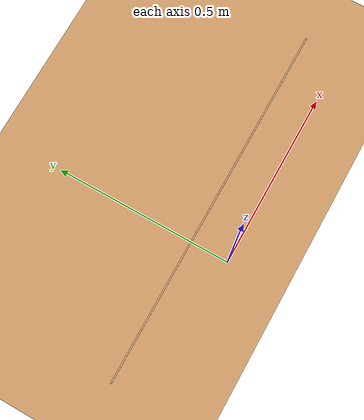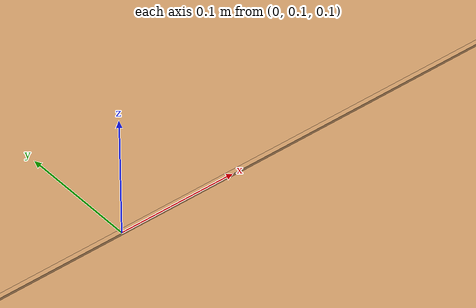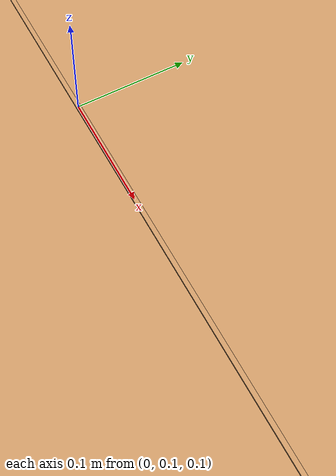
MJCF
<mujoco model="ant">
  <compiler angle="degree" coordinate="local" inertiafromgeom="true"/>
  <option timestep="0.01" iterations="4"/>

  <default>
    <joint armature="1" damping="1" limited="true"/>
    <geom contype="0" conaffinity="0" condim="3" density="5.0" friction="1 0.5 0.5" rgba="0.8 0.6 0.4 1"/>
  </default>
  <asset>
    <texture builtin="gradient" height="100" rgb1="1 1 1" rgb2="0 0 0" type="skybox" width="100"/>
    <texture builtin="flat" height="1278" mark="cross" markrgb="1 1 1" name="texgeom" random="0.01" rgb1="0.8 0.6 0.4" rgb2="0.8 0.6 0.4" type="cube" width="127"/>
    <texture builtin="checker" height="100" name="texplane" rgb1="0 0 0" rgb2="0.8 0.8 0.8" type="2d" width="100"/>
    <material name="MatPlane" reflectance="0.5" shininess="1" specular="1" texrepeat="60 60" texture="texplane"/>
    <material name="geom" texture="texgeom" texuniform="true"/>
    <mesh name="box" file="tet.obj"/>
  </asset>

  <worldbody>
    <light cutoff="100" diffuse="1 1 1" dir="-0 0 -1.3" directional="true" exponent="1" pos="0 0 1.3" specular=".1 .1 .1"/>
    <geom name="floor" contype="1" conaffinity="1" pos="0 0 -0.1" type="box" size="10. 10. 0.2"/>

    <body name="box1" pos="0.1 0.1 0.1">
      <geom name="box1" contype="1" conaffinity="1" pos="0 0 0" type="box" size="0.5 0.002 0.002"/>
      <joint armature="0" damping="0" limited="false" margin="0.01" name="root1" pos="0 0 0" type="free"/>
    </body>

  </worldbody>
</mujoco>
